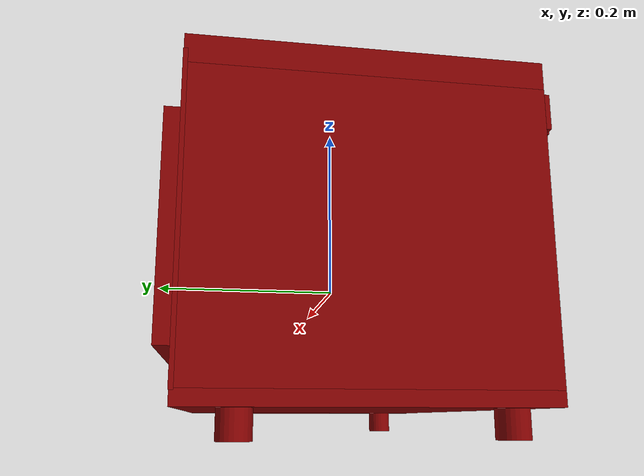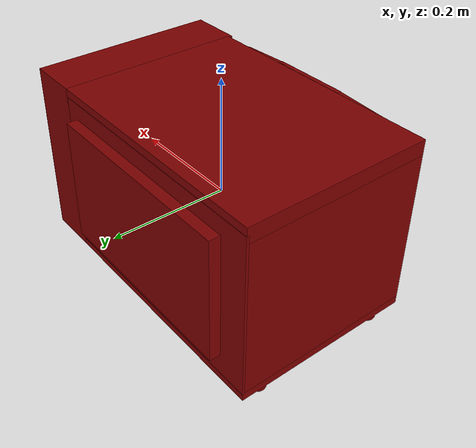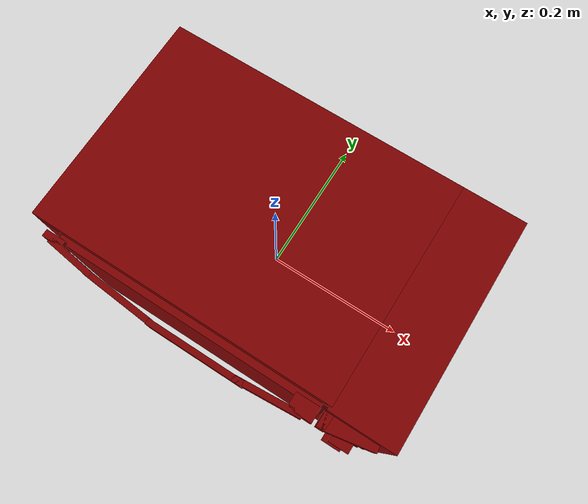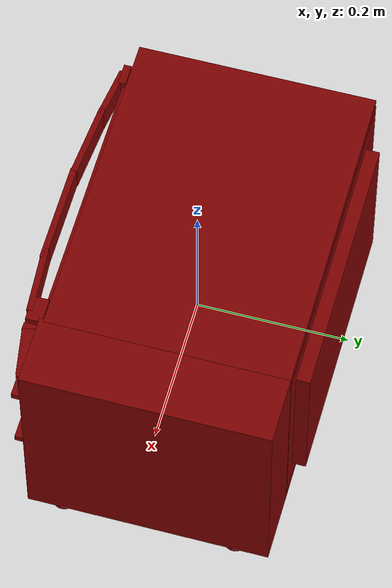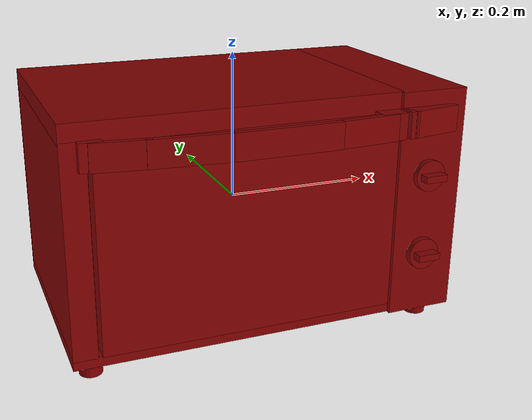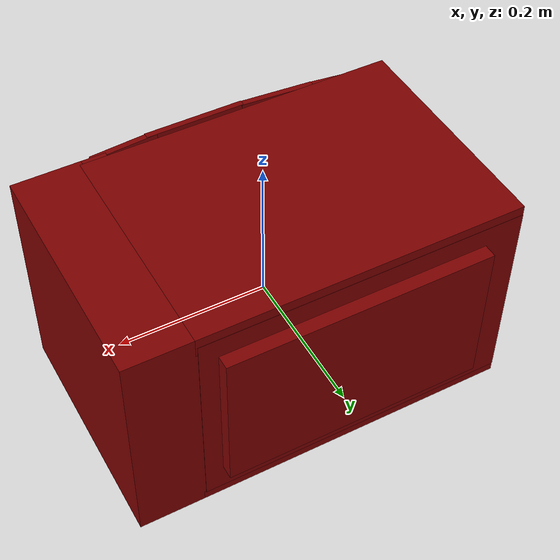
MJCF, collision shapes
<?xml version='1.0' encoding='UTF-8'?>
<mujoco model="model">
  <option timestep="0.002" gravity="0.0 0.0 -9.81"/>
  <compiler angle="radian"/>
  <asset>
    <mesh file="visuals/Body001.obj" name="Body001_vis"/>
    <mesh file="visuals/Door001.obj" name="Door001_vis"/>
    <mesh file="visuals/Door001_Clear.obj" name="Door001_Clear_vis"/>
    <mesh file="visuals/Handle001.obj" name="Handle001_vis"/>
    <mesh file="visuals/Knob001.obj" name="Knob001_vis"/>
    <mesh file="visuals/Knob002.obj" name="Knob002_vis"/>
    <mesh file="visuals/Shelf001.obj" name="Shelf001_vis"/>
    <texture file="visuals/T_BC001.png" name="Body001_material" type="2d"/>
    <material name="Body001_material" rgba="1 1 1 1.0" texture="Body001_material" shininess="0.05" specular="2"/>
    <texture file="visuals/T_BC001.png" name="Door001_material" type="2d"/>
    <material name="Door001_material" rgba="1 1 1 1.0" texture="Door001_material" shininess="0.1" specular="2"/>
    <texture file="visuals/T_BC001.png" name="Door001_Clear_material" type="2d"/>
    <material name="Door001_Clear_material" rgba="1 1 1 0.75" texture="Door001_Clear_material" shininess="0.1" specular="1"/>
    <texture file="visuals/T_BC001.png" name="Handle001_material" type="2d"/>
    <material name="Handle001_material" rgba="1 1 1 1.0" texture="Handle001_material" shininess="0.1" specular="1"/>
    <texture file="visuals/T_BC001.png" name="Knob001_material" type="2d"/>
    <material name="Knob001_material" rgba="1 1 1 1.0" texture="Knob001_material" shininess="0.1" specular="1"/>
    <texture file="visuals/T_BC001.png" name="Knob002_material" type="2d"/>
    <material name="Knob002_material" rgba="1 1 1 1.0" texture="Knob002_material" shininess="0.1" specular="1"/>
    <texture file="visuals/T_BC001.png" name="Shelf001_material" type="2d"/>
    <material name="Shelf001_material" rgba="1 1 1 1.0" texture="Shelf001_material" shininess="0.1" specular="1"/>
  </asset>
  <default>
    <default class="visual">
      <geom conaffinity="0" contype="0" group="1" type="mesh"/>
    </default>
    <default class="collision">
      <geom group="0" rgba="0.5 0 0 0.5"/>
    </default>
    <default class="spawn">
      <geom group="0" rgba="1 1 1 0.5" contype="0" conaffinity="0"/>
      <site group="0" rgba="1 1 1 0.5"/>
    </default>
    <default class="region">
      <geom group="1" conaffinity="0" contype="0" rgba="0 1 0 0"/>
    </default>
  </default>
  <worldbody>
    <body>
      <body name="object">
        <geom mesh="Body001_vis" type="mesh" solimp="0.998 0.998 0.001" solref="0.001 1" friction="0.95 0.3 0.1" class="visual" material="Body001_material"/>
        <geom class="collision" type="box" pos="-0.044912 0.163836 0.012823" size="0.2140880972146988 0.0020198922138661146 0.13912859559059143" quat="1.0 0.0 0.0 0.0" density="1000.0"/>
        <geom class="collision" type="box" pos="-0.043734 0.007950 0.152295" size="0.21526534855365753 0.15740522742271423 0.012799685820937157" quat="1.0 0.0 0.0 0.0" density="1000.0"/>
        <geom class="collision" type="box" pos="-0.243486 0.007950 0.008121" size="0.01551310159265995 0.15740546584129333 0.13517946004867554" quat="1.0 0.0 0.0 0.0" density="1000.0"/>
        <geom class="collision" type="box" pos="-0.043734 0.007950 -0.131767" size="0.2152654230594635 0.1574053019285202 0.00688356626778841" quat="1.0 0.0 0.0 0.0" density="1000.0"/>
        <geom class="collision" type="box" pos="0.213294 0.005038 0.013222" size="0.04570510983467102 0.1603168249130249 0.15187261998653412" quat="1.0 0.0 0.0 0.0" density="1000.0"/>
        <geom class="collision" type="box" pos="0.206219 -0.159821 0.128534" size="0.03439680486917496 0.010685496963560581 0.01701904833316803" quat="0.9960876107215881 0.0 0.0 0.08837131410837173" density="1000.0"/>
        <geom class="collision" type="box" pos="0.173265 -0.165357 0.128534" size="0.005682479124516249 0.010685497894883156 0.01701904833316803" quat="1.0 0.0 0.0 0.0" density="1000.0"/>
        <geom class="collision" type="box" pos="-0.032563 0.173891 0.017515" size="0.17744673788547516 0.010239753872156143 0.10587236285209656" quat="1.0 0.0 0.0 0.0" density="1000.0"/>
        <geom class="collision" type="box" pos="-0.222396 0.003790 0.064605" size="0.004804165568202734 0.1254395842552185 0.007929136976599693" quat="1.0 0.0 0.0 0.0" density="1000.0"/>
        <geom class="collision" type="box" pos="-0.223644 0.003790 0.029541" size="0.004804165568202734 0.1254395842552185 0.013520335778594017" quat="1.0 0.0 0.0 0.0" density="1000.0"/>
        <geom class="collision" type="box" pos="-0.222396 0.003790 -0.017120" size="0.005446018185466528 0.1254395842552185 0.02287634275853634" quat="1.0 0.0 0.0 0.0" density="1000.0"/>
        <geom class="collision" type="box" pos="-0.221549 0.003790 -0.057009" size="0.004804163705557585 0.1254395842552185 0.007625168655067682" quat="1.0 0.0 0.0 0.0" density="1000.0"/>
        <geom class="collision" type="box" pos="0.146037 0.003790 0.064605" size="0.004804184660315514 0.1254395842552185 0.007929136976599693" quat="1.0 0.0 0.0 0.0" density="1000.0"/>
        <geom class="collision" type="box" pos="0.145812 0.003790 0.030322" size="0.004804184660315514 0.1254395842552185 0.013520327396690845" quat="1.0 0.0 0.0 0.0" density="1000.0"/>
        <geom class="collision" type="box" pos="0.146037 0.003790 -0.017120" size="0.0054460372775793076 0.1254395842552185 0.02287634275853634" quat="1.0 0.0 0.0 0.0" density="1000.0"/>
        <geom class="collision" type="box" pos="0.145191 0.003790 -0.057009" size="0.004804184194654226 0.1254395842552185 0.007625168655067682" quat="1.0 0.0 0.0 0.0" density="1000.0"/>
        <geom class="collision" type="cylinder" pos="0.234061 -0.114303 -0.151132" size="0.014817764982581139 0.013552319258451462" quat="7.549790126404332e-08 1.0 -1.1102230246251565e-16 1.1102229584507075e-16" density="1000.0"/>
        <geom class="collision" type="cylinder" pos="0.234061 0.116033 -0.151132" size="0.014817764982581139 0.013552319258451462" quat="7.549790126404332e-08 1.0 -1.1102230246251565e-16 1.1102229584507075e-16" density="1000.0"/>
        <geom class="collision" type="cylinder" pos="-0.232038 -0.114303 -0.151132" size="0.014817764982581139 0.013552319258451462" quat="7.549790126404332e-08 1.0 -1.1102230246251565e-16 1.1102229584507075e-16" density="1000.0"/>
        <geom class="collision" type="cylinder" pos="-0.232038 0.116033 -0.151132" size="0.014817764982581139 0.013552319258451462" quat="7.549790126404332e-08 1.0 -1.1102230246251565e-16 1.1102229584507075e-16" density="1000.0"/>
        <body name="Door001">
          <joint axis="1.0 0.0 0.0" pos="-0.039517 -0.158866 -0.120276" limited="true" name="Door001_joint" range="0.0 1.5707963267948966" type="hinge" damping="1" frictionloss="1" armature=".01" stiffness="0.05"/>
          <geom mesh="Door001_vis" type="mesh" solimp="0.998 0.998 0.001" solref="0.001 1" friction="0.95 0.3 0.1" class="visual" material="Door001_material"/>
          <geom class="collision" type="box" pos="-0.031511 -0.145762 0.007531" size="0.19299356639385223 0.013378138653934002 0.1289387196302414" quat="1.0 0.0 0.0 0.0" density="1000.0"/>
          <body name="Door001_Clear">
            <geom mesh="Door001_Clear_vis" type="mesh" solimp="0.998 0.998 0.001" solref="0.001 1" friction="0.95 0.3 0.1" class="visual" material="Door001_Clear_material"/>
            <geom class="collision" type="box" pos="-0.039667 -0.144917 0.013466" size="0.15619301795959473 0.011817453429102898 0.09648047387599945" quat="1.0 0.0 0.0 0.0" density="1000.0"/>
          </body>
          <body name="Handle001">
            <geom mesh="Handle001_vis" type="mesh" solimp="0.998 0.998 0.001" solref="0.001 1" friction="0.95 0.3 0.1" class="visual" material="Handle001_material"/>
            <geom class="collision" type="box" pos="0.001699 -0.181551 0.128534" size="0.06876441836357117 0.004100143909454346 0.017019083723425865" quat="1.0 0.0 0.0 0.0" density="1000.0"/>
            <geom class="collision" type="box" pos="-0.225756 -0.159950 0.128534" size="0.01420120894908905 0.004956750199198723 0.017019076272845268" quat="1.0 0.0 0.0 0.0" density="1000.0"/>
            <geom class="collision" type="box" pos="-0.115785 -0.176721 0.128534" size="0.051081862300634384 0.004100130405277014 0.017019039019942284" quat="0.9991695284843445 0.0 -0.0 -0.04074633866548538" density="1000.0"/>
            <geom class="collision" type="box" pos="0.145073 -0.165678 0.128534" size="0.01700463891029358 0.0106855109333992 0.01701907068490982" quat="1.0 0.0 0.0 0.0" density="1000.0"/>
            <geom class="collision" type="box" pos="0.102666 -0.178053 0.128534" size="0.04628278687596321 0.0041001299396157265 0.017019039019942284" quat="0.9993327856063843 0.0 0.0 0.036523208022117615" density="1000.0"/>
            <geom class="collision" type="box" pos="-0.193988 -0.168401 0.128534" size="0.03551480919122696 0.0041001299396157265 0.017019039019942284" quat="0.9977550506591797 0.0 -0.0 -0.06696879118680954" density="1000.0"/>
          </body>
        </body>
        <body name="Knob001">
          <joint axis="0.0 1.0 0.0" pos="0.208070 -0.167962 -0.052691" limited="true" name="Knob001_joint" range="0.0 4.71238898038469" type="hinge" damping="0.05" armature="0.001"/>
          <geom mesh="Knob001_vis" type="mesh" solimp="0.998 0.998 0.001" solref="0.001 1" friction="0.95 0.3 0.1" class="visual" material="Knob001_material"/>
          <geom class="collision" type="cylinder" pos="0.207659 -0.161866 -0.053101" size="0.02137417532503605 0.004418139345943928" quat="0.7071068286895752 0.7071067690849304 0.0 0.0" density="1000.0"/>
          <geom class="collision" type="box" pos="0.207659 -0.173299 -0.053101" size="0.015386233106255531 0.007005007937550545 0.004426498897373676" quat="1.0 0.0 0.0 0.0" density="1000.0"/>
        </body>
        <body name="Knob002">
          <joint axis="0.0 1.0 0.0" pos="0.208547 -0.167962 0.054952" limited="true" name="Knob002_joint" range="0.0 5.323254218582705" type="hinge" damping="0.05" armature="0.001"/>
          <geom mesh="Knob002_vis" type="mesh" solimp="0.998 0.998 0.001" solref="0.001 1" friction="0.95 0.3 0.1" class="visual" material="Knob002_material"/>
          <geom class="collision" type="cylinder" pos="0.208768 -0.162027 0.055168" size="0.020782804116606712 0.004295899532735348" quat="0.7071068286895752 0.7071067690849304 0.0 0.0" density="1000.0"/>
          <geom class="collision" type="box" pos="0.208768 -0.173100 0.055168" size="0.0149827366694808 0.006811194587498903 0.004383939318358898" quat="1.0 0.0 0.0 0.0" density="1000.0"/>
        </body>
        <body name="Shelf001">
          <joint axis="0.0 -1.0 0.0" pos="-0.038374 -0.002498 0.005946" limited="true" name="Shelf001_joint" range="0.0 0.2" type="slide" damping="1" frictionloss="1" armature=".01" stiffness="0.05"/>
          <geom mesh="Shelf001_vis" type="mesh" solimp="0.998 0.998 0.001" solref="0.001 1" friction="0.95 0.3 0.1" class="visual" material="Shelf001_material"/>
          <geom class="collision" type="box" pos="-0.215775 -0.002361 0.011618" size="0.008577265776693821 0.10600447654724121 0.001667578355409205" quat="1.0 0.0 0.0 0.0" density="1000.0"/>
          <geom class="collision" type="box" pos="-0.201876 -0.002368 0.006828" size="0.008577265776693821 0.10601095855236053 0.0016675611259415746" quat="0.9440328478813171 -2.0632491271044273e-08 0.3298514783382416 7.209132402152818e-09" density="1000.0"/>
          <geom class="collision" type="box" pos="0.126227 -0.002368 0.006828" size="0.008577265776693821 0.10601095855236053 0.0016675611259415746" quat="7.127249546101666e-08 -0.9440328478813171 -2.4903092921135794e-08 -0.3298514783382416" density="1000.0"/>
          <geom class="collision" type="box" pos="0.139336 -0.002361 0.011618" size="0.008577265776693821 0.10600447654724121 0.0016675770748406649" quat="1.0 0.0 0.0 0.0" density="1000.0"/>
          <geom class="collision" type="box" pos="-0.037792 -0.002550 0.001434" size="0.16691850125789642 0.10659922659397125 0.0031835513655096292" quat="1.0 0.0 0.0 0.0" density="1000.0"/>
        </body>
        <geom class="region" name="reg_int" type="box" pos="-0.03904099999999999 -0.0006959999999999883 0.009498" size="0.190668 0.145136 0.131015"/>
        <geom class="region" name="reg_main" type="box" pos="0.0 0.012787500000000007 0.0" size="0.259 0.1720275 0.165095"/>
      </body>
    </body>
  </worldbody>
  <actuator>
    <motor name="Door001_joint_actuator" joint="Door001_joint" gear="50"/>
    <motor name="Knob001_joint_actuator" joint="Knob001_joint" gear="50"/>
    <motor name="Knob002_joint_actuator" joint="Knob002_joint" gear="50"/>
    <motor name="Shelf001_joint_actuator" joint="Shelf001_joint" gear="50"/>
  </actuator>
</mujoco>
